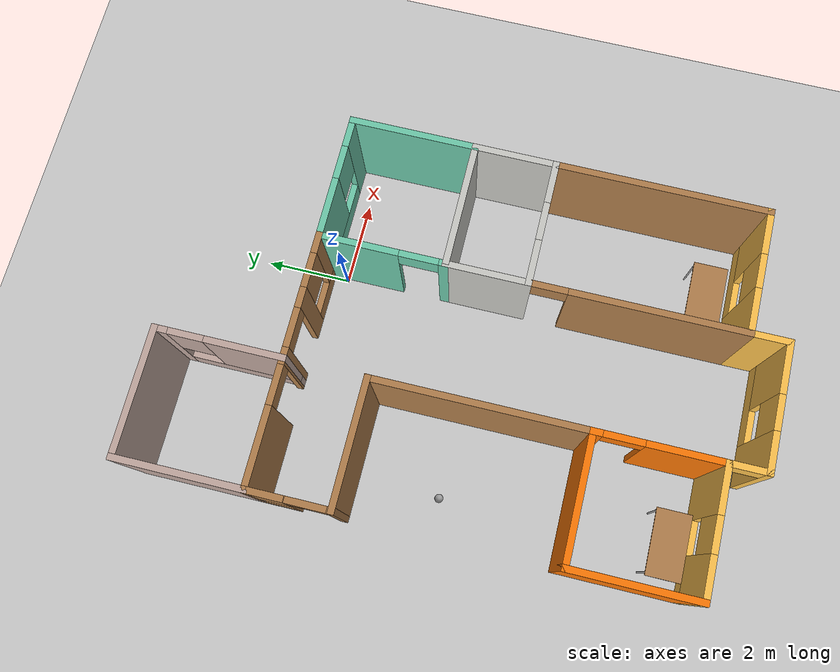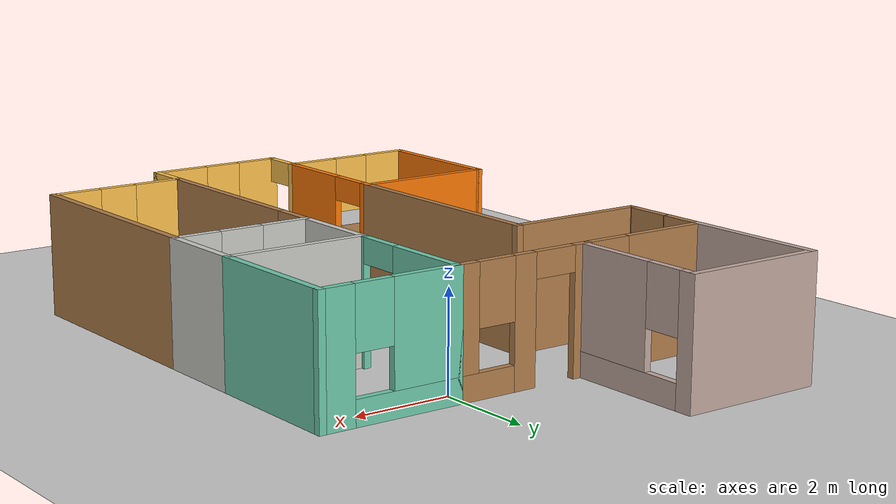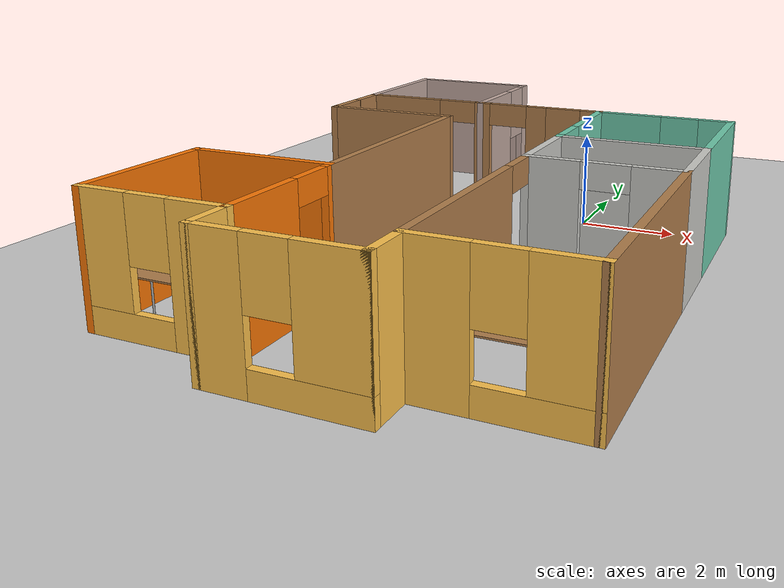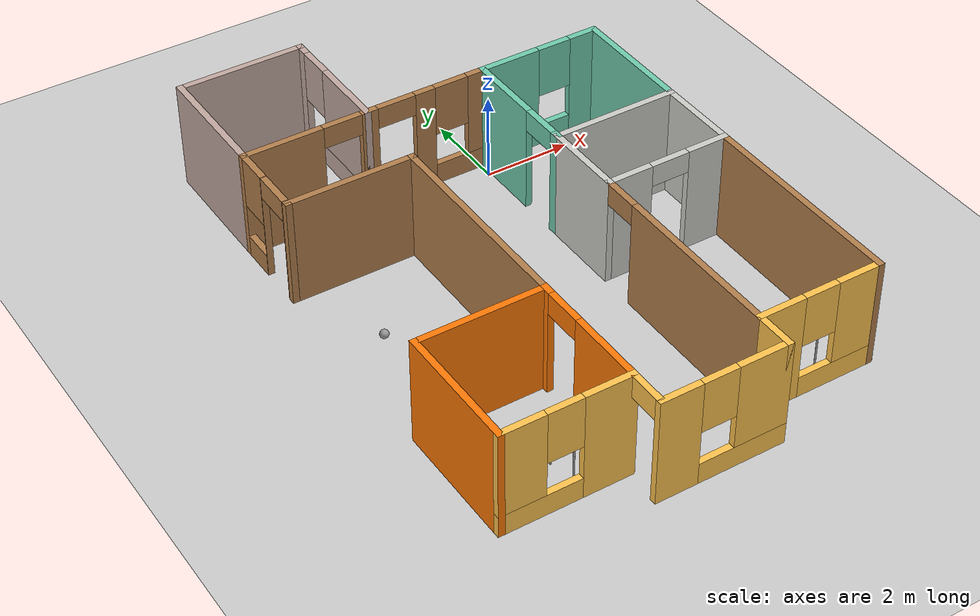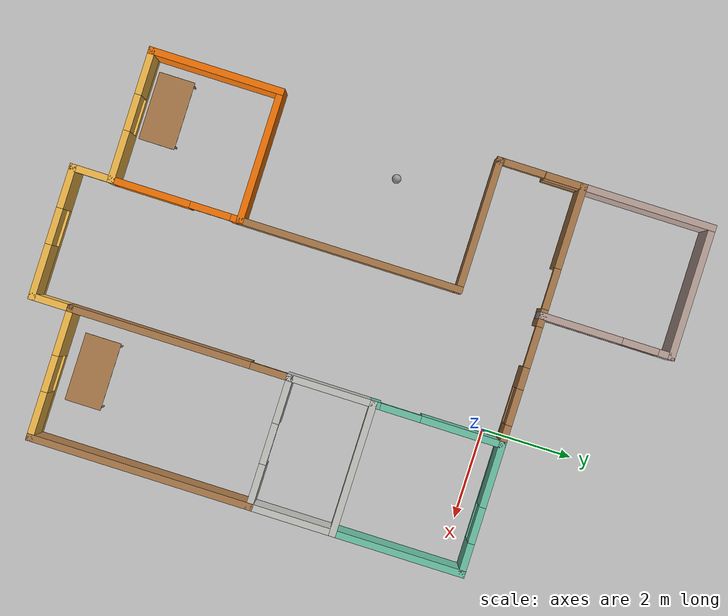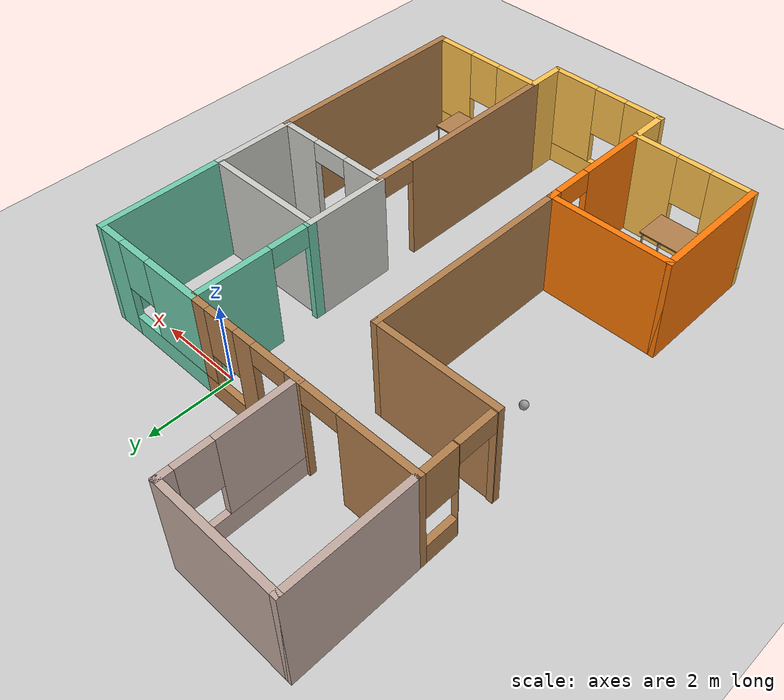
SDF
<sdf version="1.6">
 <world name="default">
  <model name="ground_plane">
   <static>1</static>
   <link name="link">
    <collision name="collision">
     <geometry><plane><normal>0 0 1</normal><size>100 100</size></plane></geometry>
     <surface>
      <contact><collide_bitmask>65535</collide_bitmask></contact>
      <friction><ode><mu>100</mu><mu2>50</mu2></ode></friction>
     </surface>
    </collision>
    <visual name="visual">
     <cast_shadows>0</cast_shadows>
     <geometry><plane><normal>0 0 1</normal><size>100 100</size></plane></geometry>
     <material>
      <script><uri>file://media/materials/scripts/gazebo.material</uri><name>Gazebo/Grey</name></script>
     </material>
    </visual>
   </link>
  </model>
  <model name="myBuilding">
   <pose>-1.28727 -3.3563 0 0 -0 0</pose>
   <link name="Wall_1">
    <pose>0 -6.625 0 0 -0 0</pose>
    <visual name="Wall_1_Visual_0">
     <pose>-1.01471 0 1.25 0 -0 0</pose>
     <geometry><box><size>0.970584 0.15 2.5</size></box></geometry>
     <material>
      <script><uri>file://media/materials/scripts/gazebo.material</uri><name>Gazebo/Grey</name></script>
      <ambient>1 0.764706 0.305882 1</ambient>
     </material>
     <meta><layer>0</layer></meta>
    </visual>
    <collision name="Wall_1_Collision_0">
     <geometry><box><size>0.970584 0.15 2.5</size></box></geometry>
     <pose>-1.01471 0 1.25 0 -0 0</pose>
    </collision>
    <visual name="Wall_1_Visual_1">
     <pose>0.485292 0 0.25 0 -0 0</pose>
     <geometry><box><size>2.02942 0.15 0.5</size></box></geometry>
     <material>
      <script><uri>file://media/materials/scripts/gazebo.material</uri><name>Gazebo/Grey</name></script>
      <ambient>1 0.764706 0.305882 1</ambient>
     </material>
     <meta><layer>0</layer></meta>
    </visual>
    <collision name="Wall_1_Collision_1">
     <geometry><box><size>2.02942 0.15 0.5</size></box></geometry>
     <pose>0.485292 0 0.25 0 -0 0</pose>
    </collision>
    <visual name="Wall_1_Visual_2">
     <pose>0.885292 0 1.5 0 -0 0</pose>
     <geometry><box><size>1.22942 0.15 2</size></box></geometry>
     <material>
      <script><uri>file://media/materials/scripts/gazebo.material</uri><name>Gazebo/Grey</name></script>
      <ambient>1 0.764706 0.305882 1</ambient>
     </material>
     <meta><layer>0</layer></meta>
    </visual>
    <collision name="Wall_1_Collision_2">
     <geometry><box><size>1.22942 0.15 2</size></box></geometry>
     <pose>0.885292 0 1.5 0 -0 0</pose>
    </collision>
    <visual name="Wall_1_Visual_3">
     <pose>-0.129416 0 1.9 0 -0 0</pose>
     <geometry><box><size>0.8 0.15 1.2</size></box></geometry>
     <material>
      <script><uri>file://media/materials/scripts/gazebo.material</uri><name>Gazebo/Grey</name></script>
      <ambient>1 0.764706 0.305882 1</ambient>
     </material>
     <meta><layer>0</layer></meta>
    </visual>
    <collision name="Wall_1_Collision_3">
     <geometry><box><size>0.8 0.15 1.2</size></box></geometry>
     <pose>-0.129416 0 1.9 0 -0 0</pose>
    </collision>
   </link>
   <link name="Wall_10">
    <collision name="Wall_10_Collision">
     <geometry><box><size>3 0.15 2.5</size></box></geometry>
     <pose>0 0 1.25 0 -0 0</pose>
    </collision>
    <visual name="Wall_10_Visual">
     <pose>0 0 1.25 0 -0 0</pose>
     <geometry><box><size>3 0.15 2.5</size></box></geometry>
     <material>
      <script><uri>file://media/materials/scripts/gazebo.material</uri><name>Gazebo/CeilingTiled</name></script>
      <ambient>1 1 1 1</ambient>
     </material>
     <meta><layer>0</layer></meta>
    </visual>
    <pose>2.85 0.925 0 0 -0 3.14159</pose>
   </link>
   <link name="Wall_11">
    <collision name="Wall_11_Collision">
     <geometry><box><size>2 0.15 2.5</size></box></geometry>
     <pose>0 0 1.25 0 -0 0</pose>
    </collision>
    <visual name="Wall_11_Visual">
     <pose>0 0 1.25 0 -0 0</pose>
     <geometry><box><size>2 0.15 2.5</size></box></geometry>
     <material>
      <script><uri>file://media/materials/scripts/gazebo.material</uri><name>Gazebo/CeilingTiled</name></script>
      <ambient>1 1 1 1</ambient>
     </material>
     <meta><layer>0</layer></meta>
    </visual>
    <pose>1.425 0 0 0 0 -1.5708</pose>
   </link>
   <link name="Wall_13">
    <collision name="Wall_13_Collision">
     <geometry><box><size>3 0.15 2.5</size></box></geometry>
     <pose>0 0 1.25 0 -0 0</pose>
    </collision>
    <visual name="Wall_13_Visual">
     <pose>0 0 1.25 0 -0 0</pose>
     <geometry><box><size>3 0.15 2.5</size></box></geometry>
     <material>
      <script><uri>file://media/materials/scripts/gazebo.material</uri><name>Gazebo/Grey</name></script>
      <ambient>0.435294 0.796078 0.67451 1</ambient>
     </material>
     <meta><layer>0</layer></meta>
    </visual>
    <pose>4.275 2.35 0 0 -0 1.5708</pose>
   </link>
   <link name="Wall_14">
    <pose>2.85 3.775 0 0 -0 3.14159</pose>
    <visual name="Wall_14_Visual_0">
     <pose>-1.12972 0 1.25 0 -0 0</pose>
     <geometry><box><size>0.740563 0.15 2.5</size></box></geometry>
     <material>
      <script><uri>file://media/materials/scripts/gazebo.material</uri><name>Gazebo/Grey</name></script>
      <ambient>0.435294 0.796078 0.67451 1</ambient>
     </material>
     <meta><layer>0</layer></meta>
    </visual>
    <collision name="Wall_14_Collision_0">
     <geometry><box><size>0.740563 0.15 2.5</size></box></geometry>
     <pose>-1.12972 0 1.25 0 -0 0</pose>
    </collision>
    <visual name="Wall_14_Visual_1">
     <pose>0.370282 0 0.25 0 -0 0</pose>
     <geometry><box><size>2.25944 0.15 0.5</size></box></geometry>
     <material>
      <script><uri>file://media/materials/scripts/gazebo.material</uri><name>Gazebo/Grey</name></script>
      <ambient>0.435294 0.796078 0.67451 1</ambient>
     </material>
     <meta><layer>0</layer></meta>
    </visual>
    <collision name="Wall_14_Collision_1">
     <geometry><box><size>2.25944 0.15 0.5</size></box></geometry>
     <pose>0.370282 0 0.25 0 -0 0</pose>
    </collision>
    <visual name="Wall_14_Visual_2">
     <pose>0.770282 0 1.5 0 -0 0</pose>
     <geometry><box><size>1.45944 0.15 2</size></box></geometry>
     <material>
      <script><uri>file://media/materials/scripts/gazebo.material</uri><name>Gazebo/Grey</name></script>
      <ambient>0.435294 0.796078 0.67451 1</ambient>
     </material>
     <meta><layer>0</layer></meta>
    </visual>
    <collision name="Wall_14_Collision_2">
     <geometry><box><size>1.45944 0.15 2</size></box></geometry>
     <pose>0.770282 0 1.5 0 -0 0</pose>
    </collision>
    <visual name="Wall_14_Visual_3">
     <pose>-0.359437 0 1.9 0 -0 0</pose>
     <geometry><box><size>0.8 0.15 1.2</size></box></geometry>
     <material>
      <script><uri>file://media/materials/scripts/gazebo.material</uri><name>Gazebo/Grey</name></script>
      <ambient>0.435294 0.796078 0.67451 1</ambient>
     </material>
     <meta><layer>0</layer></meta>
    </visual>
    <collision name="Wall_14_Collision_3">
     <geometry><box><size>0.8 0.15 1.2</size></box></geometry>
     <pose>-0.359437 0 1.9 0 -0 0</pose>
    </collision>
   </link>
   <link name="Wall_15">
    <pose>1.425 2.35 0 0 0 -1.5708</pose>
    <visual name="Wall_15_Visual_0">
     <pose>-0.563237 0 1.25 0 -0 0</pose>
     <geometry><box><size>1.87353 0.15 2.5</size></box></geometry>
     <material>
      <script><uri>file://media/materials/scripts/gazebo.material</uri><name>Gazebo/Grey</name></script>
      <ambient>0.435294 0.796078 0.67451 1</ambient>
     </material>
     <meta><layer>0</layer></meta>
    </visual>
    <collision name="Wall_15_Collision_0">
     <geometry><box><size>1.87353 0.15 2.5</size></box></geometry>
     <pose>-0.563237 0 1.25 0 -0 0</pose>
    </collision>
    <visual name="Wall_15_Visual_1">
     <pose>1.38676 0 1.25 0 -0 0</pose>
     <geometry><box><size>0.226475 0.15 2.5</size></box></geometry>
     <material>
      <script><uri>file://media/materials/scripts/gazebo.material</uri><name>Gazebo/Grey</name></script>
      <ambient>0.435294 0.796078 0.67451 1</ambient>
     </material>
     <meta><layer>0</layer></meta>
    </visual>
    <collision name="Wall_15_Collision_1">
     <geometry><box><size>0.226475 0.15 2.5</size></box></geometry>
     <pose>1.38676 0 1.25 0 -0 0</pose>
    </collision>
    <visual name="Wall_15_Visual_2">
     <pose>0.823525 0 2.25 0 -0 0</pose>
     <geometry><box><size>0.9 0.15 0.5</size></box></geometry>
     <material>
      <script><uri>file://media/materials/scripts/gazebo.material</uri><name>Gazebo/Grey</name></script>
      <ambient>0.435294 0.796078 0.67451 1</ambient>
     </material>
     <meta><layer>0</layer></meta>
    </visual>
    <collision name="Wall_15_Collision_2">
     <geometry><box><size>0.9 0.15 0.5</size></box></geometry>
     <pose>0.823525 0 2.25 0 -0 0</pose>
    </collision>
   </link>
   <link name="Wall_17">
    <pose>-1.425 -6.2 0 0 -0 1.5708</pose>
    <visual name="Wall_17_Visual_0">
     <pose>-0.443398 0 1.25 0 -0 0</pose>
     <geometry><box><size>0.113204 0.15 2.5</size></box></geometry>
     <material>
      <script><uri>file://media/materials/scripts/gazebo.material</uri><name>Gazebo/Grey</name></script>
      <ambient>1 0.764706 0.305882 1</ambient>
     </material>
     <meta><layer>0</layer></meta>
    </visual>
    <collision name="Wall_17_Collision_0">
     <geometry><box><size>0.113204 0.15 2.5</size></box></geometry>
     <pose>-0.443398 0 1.25 0 -0 0</pose>
    </collision>
    <visual name="Wall_17_Visual_1">
     <pose>0.056602 0 2.25 0 -0 0</pose>
     <geometry><box><size>0.886796 0.15 0.5</size></box></geometry>
     <material>
      <script><uri>file://media/materials/scripts/gazebo.material</uri><name>Gazebo/Grey</name></script>
      <ambient>1 0.764706 0.305882 1</ambient>
     </material>
     <meta><layer>0</layer></meta>
    </visual>
    <collision name="Wall_17_Collision_1">
     <geometry><box><size>0.886796 0.15 0.5</size></box></geometry>
     <pose>0.056602 0 2.25 0 -0 0</pose>
    </collision>
   </link>
   <link name="Wall_18">
    <pose>-2.85 -5.775 0 0 -0 3.14159</pose>
    <visual name="Wall_18_Visual_0">
     <pose>-0.922456 0 1.25 0 -0 0</pose>
     <geometry><box><size>1.15509 0.15 2.5</size></box></geometry>
     <material>
      <script><uri>file://media/materials/scripts/gazebo.material</uri><name>Gazebo/Grey</name></script>
      <ambient>1 0.764706 0.305882 1</ambient>
     </material>
     <meta><layer>0</layer></meta>
    </visual>
    <collision name="Wall_18_Collision_0">
     <geometry><box><size>1.15509 0.15 2.5</size></box></geometry>
     <pose>-0.922456 0 1.25 0 -0 0</pose>
    </collision>
    <visual name="Wall_18_Visual_1">
     <pose>0.577544 0 0.25 0 -0 0</pose>
     <geometry><box><size>1.84491 0.15 0.5</size></box></geometry>
     <material>
      <script><uri>file://media/materials/scripts/gazebo.material</uri><name>Gazebo/Grey</name></script>
      <ambient>1 0.764706 0.305882 1</ambient>
     </material>
     <meta><layer>0</layer></meta>
    </visual>
    <collision name="Wall_18_Collision_1">
     <geometry><box><size>1.84491 0.15 0.5</size></box></geometry>
     <pose>0.577544 0 0.25 0 -0 0</pose>
    </collision>
    <visual name="Wall_18_Visual_2">
     <pose>0.977544 0 1.5 0 -0 0</pose>
     <geometry><box><size>1.04491 0.15 2</size></box></geometry>
     <material>
      <script><uri>file://media/materials/scripts/gazebo.material</uri><name>Gazebo/Grey</name></script>
      <ambient>1 0.764706 0.305882 1</ambient>
     </material>
     <meta><layer>0</layer></meta>
    </visual>
    <collision name="Wall_18_Collision_2">
     <geometry><box><size>1.04491 0.15 2</size></box></geometry>
     <pose>0.977544 0 1.5 0 -0 0</pose>
    </collision>
    <visual name="Wall_18_Visual_3">
     <pose>0.055089 0 1.9 0 -0 0</pose>
     <geometry><box><size>0.8 0.15 1.2</size></box></geometry>
     <material>
      <script><uri>file://media/materials/scripts/gazebo.material</uri><name>Gazebo/Grey</name></script>
      <ambient>1 0.764706 0.305882 1</ambient>
     </material>
     <meta><layer>0</layer></meta>
    </visual>
    <collision name="Wall_18_Collision_3">
     <geometry><box><size>0.8 0.15 1.2</size></box></geometry>
     <pose>0.055089 0 1.9 0 -0 0</pose>
    </collision>
   </link>
   <link name="Wall_19">
    <collision name="Wall_19_Collision">
     <geometry><box><size>3 0.15 2.5</size></box></geometry>
     <pose>0 0 1.25 0 -0 0</pose>
    </collision>
    <visual name="Wall_19_Visual">
     <pose>0 0 1.25 0 -0 0</pose>
     <geometry><box><size>3 0.15 2.5</size></box></geometry>
     <material>
      <script><uri>file://media/materials/scripts/gazebo.material</uri><name>Gazebo/Grey</name></script>
      <ambient>0.996078 0.47451 0.0196078 1</ambient>
     </material>
     <meta><layer>0</layer></meta>
    </visual>
    <pose>-4.275 -4.35 0 0 -0 1.5708</pose>
   </link>
   <link name="Wall_2">
    <collision name="Wall_2_Collision">
     <geometry><box><size>1 0.15 2.5</size></box></geometry>
     <pose>0 0 1.25 0 -0 0</pose>
    </collision>
    <visual name="Wall_2_Visual">
     <pose>0 0 1.25 0 -0 0</pose>
     <geometry><box><size>1 0.15 2.5</size></box></geometry>
     <material>
      <script><uri>file://media/materials/scripts/gazebo.material</uri><name>Gazebo/Grey</name></script>
      <ambient>1 0.764706 0.305882 1</ambient>
     </material>
     <meta><layer>0</layer></meta>
    </visual>
    <pose>1.425 -6.2 0 0 -0 1.5708</pose>
   </link>
   <link name="Wall_20">
    <collision name="Wall_20_Collision">
     <geometry><box><size>3 0.15 2.5</size></box></geometry>
     <pose>0 0 1.25 0 -0 0</pose>
    </collision>
    <visual name="Wall_20_Visual">
     <pose>0 0 1.25 0 -0 0</pose>
     <geometry><box><size>3 0.15 2.5</size></box></geometry>
     <material>
      <script><uri>file://media/materials/scripts/gazebo.material</uri><name>Gazebo/Grey</name></script>
      <ambient>0.996078 0.47451 0.0196078 1</ambient>
     </material>
     <meta><layer>0</layer></meta>
    </visual>
    <pose>-2.85 -2.925 0 0 -0 0</pose>
   </link>
   <link name="Wall_21">
    <pose>-1.425 -4.35 0 0 0 -1.5708</pose>
    <visual name="Wall_21_Visual_0">
     <pose>-1.35881 0 1.25 0 -0 0</pose>
     <geometry><box><size>0.282373 0.15 2.5</size></box></geometry>
     <material>
      <script><uri>file://media/materials/scripts/gazebo.material</uri><name>Gazebo/Grey</name></script>
      <ambient>0.996078 0.47451 0.0196078 1</ambient>
     </material>
     <meta><layer>0</layer></meta>
    </visual>
    <collision name="Wall_21_Collision_0">
     <geometry><box><size>0.282373 0.15 2.5</size></box></geometry>
     <pose>-1.35881 0 1.25 0 -0 0</pose>
    </collision>
    <visual name="Wall_21_Visual_1">
     <pose>0.591186 0 1.25 0 -0 0</pose>
     <geometry><box><size>1.81763 0.15 2.5</size></box></geometry>
     <material>
      <script><uri>file://media/materials/scripts/gazebo.material</uri><name>Gazebo/Grey</name></script>
      <ambient>0.996078 0.47451 0.0196078 1</ambient>
     </material>
     <meta><layer>0</layer></meta>
    </visual>
    <collision name="Wall_21_Collision_1">
     <geometry><box><size>1.81763 0.15 2.5</size></box></geometry>
     <pose>0.591186 0 1.25 0 -0 0</pose>
    </collision>
    <visual name="Wall_21_Visual_2">
     <pose>-0.767627 0 2.25 0 -0 0</pose>
     <geometry><box><size>0.9 0.15 0.5</size></box></geometry>
     <material>
      <script><uri>file://media/materials/scripts/gazebo.material</uri><name>Gazebo/Grey</name></script>
      <ambient>0.996078 0.47451 0.0196078 1</ambient>
     </material>
     <meta><layer>0</layer></meta>
    </visual>
    <collision name="Wall_21_Collision_2">
     <geometry><box><size>0.9 0.15 0.5</size></box></geometry>
     <pose>-0.767627 0 2.25 0 -0 0</pose>
    </collision>
   </link>
   <link name="Wall_24">
    <collision name="Wall_24_Collision">
     <geometry><box><size>5 0.15 2.5</size></box></geometry>
     <pose>0 0 1.25 0 -0 0</pose>
    </collision>
    <visual name="Wall_24_Visual">
     <pose>0 0 1.25 0 -0 0</pose>
     <geometry><box><size>5 0.15 2.5</size></box></geometry>
     <material>
      <script><uri>file://media/materials/scripts/gazebo.material</uri><name>Gazebo/Wood</name></script>
      <ambient>1 1 1 1</ambient>
     </material>
     <meta><layer>0</layer></meta>
    </visual>
    <pose>-1.425 -0.5 0 0 -0 1.5708</pose>
   </link>
   <link name="Wall_25">
    <collision name="Wall_25_Collision">
     <geometry><box><size>3 0.15 2.5</size></box></geometry>
     <pose>0 0 1.25 0 -0 0</pose>
    </collision>
    <visual name="Wall_25_Visual">
     <pose>0 0 1.25 0 -0 0</pose>
     <geometry><box><size>3 0.15 2.5</size></box></geometry>
     <material>
      <script><uri>file://media/materials/scripts/gazebo.material</uri><name>Gazebo/Wood</name></script>
      <ambient>1 1 1 1</ambient>
     </material>
     <meta><layer>0</layer></meta>
    </visual>
    <pose>-2.85 1.925 0 0 -0 3.14159</pose>
   </link>
   <link name="Wall_3">
    <pose>2.85 -5.775 0 0 -0 0</pose>
    <visual name="Wall_3_Visual_0">
     <pose>-0.941247 0 1.25 0 -0 0</pose>
     <geometry><box><size>1.11751 0.15 2.5</size></box></geometry>
     <material>
      <script><uri>file://media/materials/scripts/gazebo.material</uri><name>Gazebo/Grey</name></script>
      <ambient>1 0.764706 0.305882 1</ambient>
     </material>
     <meta><layer>0</layer></meta>
    </visual>
    <collision name="Wall_3_Collision_0">
     <geometry><box><size>1.11751 0.15 2.5</size></box></geometry>
     <pose>-0.941247 0 1.25 0 -0 0</pose>
    </collision>
    <visual name="Wall_3_Visual_1">
     <pose>0.558753 0 0.25 0 -0 0</pose>
     <geometry><box><size>1.88249 0.15 0.5</size></box></geometry>
     <material>
      <script><uri>file://media/materials/scripts/gazebo.material</uri><name>Gazebo/Grey</name></script>
      <ambient>1 0.764706 0.305882 1</ambient>
     </material>
     <meta><layer>0</layer></meta>
    </visual>
    <collision name="Wall_3_Collision_1">
     <geometry><box><size>1.88249 0.15 0.5</size></box></geometry>
     <pose>0.558753 0 0.25 0 -0 0</pose>
    </collision>
    <visual name="Wall_3_Visual_2">
     <pose>0.958753 0 1.5 0 -0 0</pose>
     <geometry><box><size>1.08249 0.15 2</size></box></geometry>
     <material>
      <script><uri>file://media/materials/scripts/gazebo.material</uri><name>Gazebo/Grey</name></script>
      <ambient>1 0.764706 0.305882 1</ambient>
     </material>
     <meta><layer>0</layer></meta>
    </visual>
    <collision name="Wall_3_Collision_2">
     <geometry><box><size>1.08249 0.15 2</size></box></geometry>
     <pose>0.958753 0 1.5 0 -0 0</pose>
    </collision>
    <visual name="Wall_3_Visual_3">
     <pose>0.017506 0 1.9 0 -0 0</pose>
     <geometry><box><size>0.8 0.15 1.2</size></box></geometry>
     <material>
      <script><uri>file://media/materials/scripts/gazebo.material</uri><name>Gazebo/Grey</name></script>
      <ambient>1 0.764706 0.305882 1</ambient>
     </material>
     <meta><layer>0</layer></meta>
    </visual>
    <collision name="Wall_3_Collision_3">
     <geometry><box><size>0.8 0.15 1.2</size></box></geometry>
     <pose>0.017506 0 1.9 0 -0 0</pose>
    </collision>
   </link>
   <link name="Wall_30">
    <pose>-4.275 2.85 0 0 -0 1.5708</pose>
    <visual name="Wall_30_Visual_0">
     <pose>-0.914094 0 1.25 0 -0 0</pose>
     <geometry><box><size>0.171813 0.15 2.5</size></box></geometry>
     <material>
      <script><uri>file://media/materials/scripts/gazebo.material</uri><name>Gazebo/Wood</name></script>
      <ambient>1 1 1 1</ambient>
     </material>
     <meta><layer>0</layer></meta>
    </visual>
    <collision name="Wall_30_Collision_0">
     <geometry><box><size>0.171813 0.15 2.5</size></box></geometry>
     <pose>-0.914094 0 1.25 0 -0 0</pose>
    </collision>
    <visual name="Wall_30_Visual_1">
     <pose>0.079254 0 1.25 0 -0 0</pose>
     <geometry><box><size>0.014884 0.15 2.5</size></box></geometry>
     <material>
      <script><uri>file://media/materials/scripts/gazebo.material</uri><name>Gazebo/Wood</name></script>
      <ambient>1 1 1 1</ambient>
     </material>
     <meta><layer>0</layer></meta>
    </visual>
    <collision name="Wall_30_Collision_1">
     <geometry><box><size>0.014884 0.15 2.5</size></box></geometry>
     <pose>0.079254 0 1.25 0 -0 0</pose>
    </collision>
    <visual name="Wall_30_Visual_2">
     <pose>0.543348 0 0.25 0 -0 0</pose>
     <geometry><box><size>0.913304 0.15 0.5</size></box></geometry>
     <material>
      <script><uri>file://media/materials/scripts/gazebo.material</uri><name>Gazebo/Wood</name></script>
      <ambient>1 1 1 1</ambient>
     </material>
     <meta><layer>0</layer></meta>
    </visual>
    <collision name="Wall_30_Collision_2">
     <geometry><box><size>0.913304 0.15 0.5</size></box></geometry>
     <pose>0.543348 0 0.25 0 -0 0</pose>
    </collision>
    <visual name="Wall_30_Visual_3">
     <pose>0.943348 0 1.5 0 -0 0</pose>
     <geometry><box><size>0.113304 0.15 2</size></box></geometry>
     <material>
      <script><uri>file://media/materials/scripts/gazebo.material</uri><name>Gazebo/Wood</name></script>
      <ambient>1 1 1 1</ambient>
     </material>
     <meta><layer>0</layer></meta>
    </visual>
    <collision name="Wall_30_Collision_3">
     <geometry><box><size>0.113304 0.15 2</size></box></geometry>
     <pose>0.943348 0 1.5 0 -0 0</pose>
    </collision>
    <visual name="Wall_30_Visual_4">
     <pose>0.486696 0 1.9 0 -0 0</pose>
     <geometry><box><size>0.8 0.15 1.2</size></box></geometry>
     <material>
      <script><uri>file://media/materials/scripts/gazebo.material</uri><name>Gazebo/Wood</name></script>
      <ambient>1 1 1 1</ambient>
     </material>
     <meta><layer>0</layer></meta>
    </visual>
    <collision name="Wall_30_Collision_4">
     <geometry><box><size>0.8 0.15 1.2</size></box></geometry>
     <pose>0.486696 0 1.9 0 -0 0</pose>
    </collision>
    <visual name="Wall_30_Visual_5">
     <pose>-0.378187 0 2.25 0 -0 0</pose>
     <geometry><box><size>0.9 0.15 0.5</size></box></geometry>
     <material>
      <script><uri>file://media/materials/scripts/gazebo.material</uri><name>Gazebo/Wood</name></script>
      <ambient>1 1 1 1</ambient>
     </material>
     <meta><layer>0</layer></meta>
    </visual>
    <collision name="Wall_30_Collision_5">
     <geometry><box><size>0.9 0.15 0.5</size></box></geometry>
     <pose>-0.378187 0 2.25 0 -0 0</pose>
    </collision>
   </link>
   <link name="Wall_31">
    <pose>-1.425 3.775 0 0 -0 0</pose>
    <visual name="Wall_31_Visual_0">
     <pose>-1.98505 0 1.25 0 -0 0</pose>
     <geometry><box><size>1.87991 0.15 2.5</size></box></geometry>
     <material>
      <script><uri>file://media/materials/scripts/gazebo.material</uri><name>Gazebo/Wood</name></script>
      <ambient>1 1 1 1</ambient>
     </material>
     <meta><layer>0</layer></meta>
    </visual>
    <collision name="Wall_31_Collision_0">
     <geometry><box><size>1.87991 0.15 2.5</size></box></geometry>
     <pose>-1.98505 0 1.25 0 -0 0</pose>
    </collision>
    <visual name="Wall_31_Visual_1">
     <pose>0.048542 0 1.25 0 -0 0</pose>
     <geometry><box><size>0.387269 0.15 2.5</size></box></geometry>
     <material>
      <script><uri>file://media/materials/scripts/gazebo.material</uri><name>Gazebo/Wood</name></script>
      <ambient>1 1 1 1</ambient>
     </material>
     <meta><layer>0</layer></meta>
    </visual>
    <collision name="Wall_31_Collision_1">
     <geometry><box><size>0.387269 0.15 2.5</size></box></geometry>
     <pose>0.048542 0 1.25 0 -0 0</pose>
    </collision>
    <visual name="Wall_31_Visual_2">
     <pose>1.38092 0 1.25 0 -0 0</pose>
     <geometry><box><size>0.477496 0.15 2.5</size></box></geometry>
     <material>
      <script><uri>file://media/materials/scripts/gazebo.material</uri><name>Gazebo/Wood</name></script>
      <ambient>1 1 1 1</ambient>
     </material>
     <meta><layer>0</layer></meta>
    </visual>
    <collision name="Wall_31_Collision_2">
     <geometry><box><size>0.477496 0.15 2.5</size></box></geometry>
     <pose>1.38092 0 1.25 0 -0 0</pose>
    </collision>
    <visual name="Wall_31_Visual_3">
     <pose>2.27234 0 0.25 0 -0 0</pose>
     <geometry><box><size>1.30533 0.15 0.5</size></box></geometry>
     <material>
      <script><uri>file://media/materials/scripts/gazebo.material</uri><name>Gazebo/Wood</name></script>
      <ambient>1 1 1 1</ambient>
     </material>
     <meta><layer>0</layer></meta>
    </visual>
    <collision name="Wall_31_Collision_3">
     <geometry><box><size>1.30533 0.15 0.5</size></box></geometry>
     <pose>2.27234 0 0.25 0 -0 0</pose>
    </collision>
    <visual name="Wall_31_Visual_4">
     <pose>2.67234 0 1.5 0 -0 0</pose>
     <geometry><box><size>0.505327 0.15 2</size></box></geometry>
     <material>
      <script><uri>file://media/materials/scripts/gazebo.material</uri><name>Gazebo/Wood</name></script>
      <ambient>1 1 1 1</ambient>
     </material>
     <meta><layer>0</layer></meta>
    </visual>
    <collision name="Wall_31_Collision_4">
     <geometry><box><size>0.505327 0.15 2</size></box></geometry>
     <pose>2.67234 0 1.5 0 -0 0</pose>
    </collision>
    <visual name="Wall_31_Visual_5">
     <pose>2.01967 0 1.9 0 -0 0</pose>
     <geometry><box><size>0.8 0.15 1.2</size></box></geometry>
     <material>
      <script><uri>file://media/materials/scripts/gazebo.material</uri><name>Gazebo/Wood</name></script>
      <ambient>1 1 1 1</ambient>
     </material>
     <meta><layer>0</layer></meta>
    </visual>
    <collision name="Wall_31_Collision_5">
     <geometry><box><size>0.8 0.15 1.2</size></box></geometry>
     <pose>2.01967 0 1.9 0 -0 0</pose>
    </collision>
    <visual name="Wall_31_Visual_6">
     <pose>-0.595092 0 2.25 0 -0 0</pose>
     <geometry><box><size>0.9 0.15 0.5</size></box></geometry>
     <material>
      <script><uri>file://media/materials/scripts/gazebo.material</uri><name>Gazebo/Wood</name></script>
      <ambient>1 1 1 1</ambient>
     </material>
     <meta><layer>0</layer></meta>
    </visual>
    <collision name="Wall_31_Collision_6">
     <geometry><box><size>0.9 0.15 0.5</size></box></geometry>
     <pose>-0.595092 0 2.25 0 -0 0</pose>
    </collision>
    <visual name="Wall_31_Visual_7">
     <pose>0.692177 0 2.25 0 -0 0</pose>
     <geometry><box><size>0.9 0.15 0.5</size></box></geometry>
     <material>
      <script><uri>file://media/materials/scripts/gazebo.material</uri><name>Gazebo/Wood</name></script>
      <ambient>1 1 1 1</ambient>
     </material>
     <meta><layer>0</layer></meta>
    </visual>
    <collision name="Wall_31_Collision_7">
     <geometry><box><size>0.9 0.15 0.5</size></box></geometry>
     <pose>0.692177 0 2.25 0 -0 0</pose>
    </collision>
   </link>
   <link name="Wall_33">
    <collision name="Wall_33_Collision">
     <geometry><box><size>3 0.15 2.5</size></box></geometry>
     <pose>0 0 1.25 0 -0 0</pose>
    </collision>
    <visual name="Wall_33_Visual">
     <pose>0 0 1.25 0 -0 0</pose>
     <geometry><box><size>3 0.15 2.5</size></box></geometry>
     <material>
      <script><uri>file://media/materials/scripts/gazebo.material</uri><name>Gazebo/Grey</name></script>
      <ambient>0.760784 0.662745 0.627451 1</ambient>
     </material>
     <meta><layer>0</layer></meta>
    </visual>
    <pose>-4.275 5.2 0 0 -0 1.5708</pose>
   </link>
   <link name="Wall_34">
    <collision name="Wall_34_Collision">
     <geometry><box><size>3 0.15 2.5</size></box></geometry>
     <pose>0 0 1.25 0 -0 0</pose>
    </collision>
    <visual name="Wall_34_Visual">
     <pose>0 0 1.25 0 -0 0</pose>
     <geometry><box><size>3 0.15 2.5</size></box></geometry>
     <material>
      <script><uri>file://media/materials/scripts/gazebo.material</uri><name>Gazebo/Grey</name></script>
      <ambient>0.760784 0.662745 0.627451 1</ambient>
     </material>
     <meta><layer>0</layer></meta>
    </visual>
    <pose>-2.85 6.625 0 0 -0 0</pose>
   </link>
   <link name="Wall_35">
    <pose>-1.425 5.2 0 0 0 -1.5708</pose>
    <visual name="Wall_35_Visual_0">
     <pose>-1.31567 0 1.25 0 -0 0</pose>
     <geometry><box><size>0.368653 0.15 2.5</size></box></geometry>
     <material>
      <script><uri>file://media/materials/scripts/gazebo.material</uri><name>Gazebo/Grey</name></script>
      <ambient>0.760784 0.662745 0.627451 1</ambient>
     </material>
     <meta><layer>0</layer></meta>
    </visual>
    <collision name="Wall_35_Collision_0">
     <geometry><box><size>0.368653 0.15 2.5</size></box></geometry>
     <pose>-1.31567 0 1.25 0 -0 0</pose>
    </collision>
    <visual name="Wall_35_Visual_1">
     <pose>0.184327 0 0.25 0 -0 0</pose>
     <geometry><box><size>2.63135 0.15 0.5</size></box></geometry>
     <material>
      <script><uri>file://media/materials/scripts/gazebo.material</uri><name>Gazebo/Grey</name></script>
      <ambient>0.760784 0.662745 0.627451 1</ambient>
     </material>
     <meta><layer>0</layer></meta>
    </visual>
    <collision name="Wall_35_Collision_1">
     <geometry><box><size>2.63135 0.15 0.5</size></box></geometry>
     <pose>0.184327 0 0.25 0 -0 0</pose>
    </collision>
    <visual name="Wall_35_Visual_2">
     <pose>0.584327 0 1.5 0 -0 0</pose>
     <geometry><box><size>1.83135 0.15 2</size></box></geometry>
     <material>
      <script><uri>file://media/materials/scripts/gazebo.material</uri><name>Gazebo/Grey</name></script>
      <ambient>0.760784 0.662745 0.627451 1</ambient>
     </material>
     <meta><layer>0</layer></meta>
    </visual>
    <collision name="Wall_35_Collision_2">
     <geometry><box><size>1.83135 0.15 2</size></box></geometry>
     <pose>0.584327 0 1.5 0 -0 0</pose>
    </collision>
    <visual name="Wall_35_Visual_3">
     <pose>-0.731347 0 1.9 0 -0 0</pose>
     <geometry><box><size>0.8 0.15 1.2</size></box></geometry>
     <material>
      <script><uri>file://media/materials/scripts/gazebo.material</uri><name>Gazebo/Grey</name></script>
      <ambient>0.760784 0.662745 0.627451 1</ambient>
     </material>
     <meta><layer>0</layer></meta>
    </visual>
    <collision name="Wall_35_Collision_3">
     <geometry><box><size>0.8 0.15 1.2</size></box></geometry>
     <pose>-0.731347 0 1.9 0 -0 0</pose>
    </collision>
   </link>
   <link name="Wall_5">
    <collision name="Wall_5_Collision">
     <geometry><box><size>5 0.15 2.5</size></box></geometry>
     <pose>0 0 1.25 0 -0 0</pose>
    </collision>
    <visual name="Wall_5_Visual">
     <pose>0 0 1.25 0 -0 0</pose>
     <geometry><box><size>5 0.15 2.5</size></box></geometry>
     <material>
      <script><uri>file://media/materials/scripts/gazebo.material</uri><name>Gazebo/Wood</name></script>
      <ambient>1 1 1 1</ambient>
     </material>
     <meta><layer>0</layer></meta>
    </visual>
    <pose>4.275 -3.35 0 0 -0 1.5708</pose>
   </link>
   <link name="Wall_6">
    <pose>2.85 -0.925 0 0 -0 3.14159</pose>
    <visual name="Wall_6_Visual_0">
     <pose>-0.99381 0 1.25 0 -0 0</pose>
     <geometry><box><size>1.01238 0.15 2.5</size></box></geometry>
     <material>
      <script><uri>file://media/materials/scripts/gazebo.material</uri><name>Gazebo/CeilingTiled</name></script>
      <ambient>1 1 1 1</ambient>
     </material>
     <meta><layer>0</layer></meta>
    </visual>
    <collision name="Wall_6_Collision_0">
     <geometry><box><size>1.01238 0.15 2.5</size></box></geometry>
     <pose>-0.99381 0 1.25 0 -0 0</pose>
    </collision>
    <visual name="Wall_6_Visual_1">
     <pose>0.95619 0 1.25 0 -0 0</pose>
     <geometry><box><size>1.08762 0.15 2.5</size></box></geometry>
     <material>
      <script><uri>file://media/materials/scripts/gazebo.material</uri><name>Gazebo/CeilingTiled</name></script>
      <ambient>1 1 1 1</ambient>
     </material>
     <meta><layer>0</layer></meta>
    </visual>
    <collision name="Wall_6_Collision_1">
     <geometry><box><size>1.08762 0.15 2.5</size></box></geometry>
     <pose>0.95619 0 1.25 0 -0 0</pose>
    </collision>
    <visual name="Wall_6_Visual_2">
     <pose>-0.03762 0 2.25 0 -0 0</pose>
     <geometry><box><size>0.9 0.15 0.5</size></box></geometry>
     <material>
      <script><uri>file://media/materials/scripts/gazebo.material</uri><name>Gazebo/CeilingTiled</name></script>
      <ambient>1 1 1 1</ambient>
     </material>
     <meta><layer>0</layer></meta>
    </visual>
    <collision name="Wall_6_Collision_2">
     <geometry><box><size>0.9 0.15 0.5</size></box></geometry>
     <pose>-0.03762 0 2.25 0 -0 0</pose>
    </collision>
   </link>
   <link name="Wall_7">
    <pose>1.425 -3.35 0 0 0 -1.5708</pose>
    <visual name="Wall_7_Visual_0">
     <pose>-2.47512 0 1.25 0 -0 0</pose>
     <geometry><box><size>0.049766 0.15 2.5</size></box></geometry>
     <material>
      <script><uri>file://media/materials/scripts/gazebo.material</uri><name>Gazebo/Wood</name></script>
      <ambient>1 1 1 1</ambient>
     </material>
     <meta><layer>0</layer></meta>
    </visual>
    <collision name="Wall_7_Collision_0">
     <geometry><box><size>0.049766 0.15 2.5</size></box></geometry>
     <pose>-2.47512 0 1.25 0 -0 0</pose>
    </collision>
    <visual name="Wall_7_Visual_1">
     <pose>0.474883 0 1.25 0 -0 0</pose>
     <geometry><box><size>4.05023 0.15 2.5</size></box></geometry>
     <material>
      <script><uri>file://media/materials/scripts/gazebo.material</uri><name>Gazebo/Wood</name></script>
      <ambient>1 1 1 1</ambient>
     </material>
     <meta><layer>0</layer></meta>
    </visual>
    <collision name="Wall_7_Collision_1">
     <geometry><box><size>4.05023 0.15 2.5</size></box></geometry>
     <pose>0.474883 0 1.25 0 -0 0</pose>
    </collision>
    <visual name="Wall_7_Visual_2">
     <pose>-2.00023 0 2.25 0 -0 0</pose>
     <geometry><box><size>0.9 0.15 0.5</size></box></geometry>
     <material>
      <script><uri>file://media/materials/scripts/gazebo.material</uri><name>Gazebo/Wood</name></script>
      <ambient>1 1 1 1</ambient>
     </material>
     <meta><layer>0</layer></meta>
    </visual>
    <collision name="Wall_7_Collision_2">
     <geometry><box><size>0.9 0.15 0.5</size></box></geometry>
     <pose>-2.00023 0 2.25 0 -0 0</pose>
    </collision>
   </link>
   <link name="Wall_9">
    <collision name="Wall_9_Collision">
     <geometry><box><size>2 0.15 2.5</size></box></geometry>
     <pose>0 0 1.25 0 -0 0</pose>
    </collision>
    <visual name="Wall_9_Visual">
     <pose>0 0 1.25 0 -0 0</pose>
     <geometry><box><size>2 0.15 2.5</size></box></geometry>
     <material>
      <script><uri>file://media/materials/scripts/gazebo.material</uri><name>Gazebo/CeilingTiled</name></script>
      <ambient>1 1 1 1</ambient>
     </material>
     <meta><layer>0</layer></meta>
    </visual>
    <pose>4.275 0 0 0 -0 1.5708</pose>
   </link>
   <static>1</static>
  </model>
  <model name="table_2">
   <static>1</static>
   <link name="link">
    <collision name="surface">
     <pose>0 0 1 0 -0 0</pose>
     <geometry><box><size>1.5 0.8 0.03</size></box></geometry>
     <surface><friction><ode><mu>0.6</mu><mu2>0.6</mu2></ode></friction></surface>
    </collision>
    <visual name="visual1">
     <pose>0 0 1 0 -0 0</pose>
     <geometry><box><size>1.5 0.8 0.03</size></box></geometry>
     <material>
      <script><uri>file://media/materials/scripts/gazebo.material</uri><name>Gazebo/Wood</name></script>
     </material>
    </visual>
    <collision name="front_left_leg">
     <pose>0.68 0.38 0.5 0 -0 0</pose>
     <geometry><cylinder><radius>0.02</radius><length>1</length></cylinder></geometry>
    </collision>
    <visual name="front_left_leg">
     <pose>0.68 0.38 0.5 0 -0 0</pose>
     <geometry><cylinder><radius>0.02</radius><length>1</length></cylinder></geometry>
     <material>
      <script><uri>file://media/materials/scripts/gazebo.material</uri><name>Gazebo/Grey</name></script>
     </material>
    </visual>
    <collision name="front_right_leg">
     <pose>0.68 -0.38 0.5 0 -0 0</pose>
     <geometry><cylinder><radius>0.02</radius><length>1</length></cylinder></geometry>
    </collision>
    <visual name="front_right_leg">
     <pose>0.68 -0.38 0.5 0 -0 0</pose>
     <geometry><cylinder><radius>0.02</radius><length>1</length></cylinder></geometry>
     <material>
      <script><uri>file://media/materials/scripts/gazebo.material</uri><name>Gazebo/Grey</name></script>
     </material>
    </visual>
    <collision name="back_right_leg">
     <pose>-0.68 -0.38 0.5 0 -0 0</pose>
     <geometry><cylinder><radius>0.02</radius><length>1</length></cylinder></geometry>
    </collision>
    <visual name="back_right_leg">
     <pose>-0.68 -0.38 0.5 0 -0 0</pose>
     <geometry><cylinder><radius>0.02</radius><length>1</length></cylinder></geometry>
     <material>
      <script><uri>file://media/materials/scripts/gazebo.material</uri><name>Gazebo/Grey</name></script>
     </material>
    </visual>
    <collision name="back_left_leg">
     <pose>-0.68 0.38 0.5 0 -0 0</pose>
     <geometry><cylinder><radius>0.02</radius><length>1</length></cylinder></geometry>
    </collision>
    <visual name="back_left_leg">
     <pose>-0.68 0.38 0.5 0 -0 0</pose>
     <geometry><cylinder><radius>0.02</radius><length>1</length></cylinder></geometry>
     <material>
      <script><uri>file://media/materials/scripts/gazebo.material</uri><name>Gazebo/Grey</name></script>
     </material>
    </visual>
   </link>
   <pose>-4.4932 -8.53633 0 0 -0 0</pose>
  </model>
  <model name="table_3">
   <static>1</static>
   <link name="link">
    <collision name="surface">
     <pose>0 0 1 0 -0 0</pose>
     <geometry><box><size>1.5 0.8 0.03</size></box></geometry>
     <surface><friction><ode><mu>0.6</mu><mu2>0.6</mu2></ode></friction></surface>
    </collision>
    <visual name="visual1">
     <pose>0 0 1 0 -0 0</pose>
     <geometry><box><size>1.5 0.8 0.03</size></box></geometry>
     <material>
      <script><uri>file://media/materials/scripts/gazebo.material</uri><name>Gazebo/Wood</name></script>
     </material>
    </visual>
    <collision name="front_left_leg">
     <pose>0.68 0.38 0.5 0 -0 0</pose>
     <geometry><cylinder><radius>0.02</radius><length>1</length></cylinder></geometry>
    </collision>
    <visual name="front_left_leg">
     <pose>0.68 0.38 0.5 0 -0 0</pose>
     <geometry><cylinder><radius>0.02</radius><length>1</length></cylinder></geometry>
     <material>
      <script><uri>file://media/materials/scripts/gazebo.material</uri><name>Gazebo/Grey</name></script>
     </material>
    </visual>
    <collision name="front_right_leg">
     <pose>0.68 -0.38 0.5 0 -0 0</pose>
     <geometry><cylinder><radius>0.02</radius><length>1</length></cylinder></geometry>
    </collision>
    <visual name="front_right_leg">
     <pose>0.68 -0.38 0.5 0 -0 0</pose>
     <geometry><cylinder><radius>0.02</radius><length>1</length></cylinder></geometry>
     <material>
      <script><uri>file://media/materials/scripts/gazebo.material</uri><name>Gazebo/Grey</name></script>
     </material>
    </visual>
    <collision name="back_right_leg">
     <pose>-0.68 -0.38 0.5 0 -0 0</pose>
     <geometry><cylinder><radius>0.02</radius><length>1</length></cylinder></geometry>
    </collision>
    <visual name="back_right_leg">
     <pose>-0.68 -0.38 0.5 0 -0 0</pose>
     <geometry><cylinder><radius>0.02</radius><length>1</length></cylinder></geometry>
     <material>
      <script><uri>file://media/materials/scripts/gazebo.material</uri><name>Gazebo/Grey</name></script>
     </material>
    </visual>
    <collision name="back_left_leg">
     <pose>-0.68 0.38 0.5 0 -0 0</pose>
     <geometry><cylinder><radius>0.02</radius><length>1</length></cylinder></geometry>
    </collision>
    <visual name="back_left_leg">
     <pose>-0.68 0.38 0.5 0 -0 0</pose>
     <geometry><cylinder><radius>0.02</radius><length>1</length></cylinder></geometry>
     <material>
      <script><uri>file://media/materials/scripts/gazebo.material</uri><name>Gazebo/Grey</name></script>
     </material>
    </visual>
   </link>
   <pose>1.31282 -8.36194 0 0 -0 0</pose>
  </model>
  <model name="my_ball">
   <link name="link_1">
    <inertial>
     <mass>1</mass>
     <inertia><ixx>0.1</ixx><ixy>0</ixy><ixz>0</ixz><iyy>0.1</iyy><iyz>0</iyz><izz>0.1</izz></inertia>
    </inertial>
    <visual name="visual">
     <geometry><sphere><radius>0.1</radius></sphere></geometry>
     <material>
      <lighting>1</lighting>
      <script><uri>file://media/materials/scripts/gazebo.material</uri><name>Gazebo/Grey</name></script>
      <shader type="vertex"><normal_map>__default__</normal_map></shader>
      <ambient>1 1 1 1</ambient>
      <diffuse>1 1 1 1</diffuse>
      <specular>1 1 1 1</specular>
      <emissive>1 1 1 1</emissive>
     </material>
    </visual>
    <collision name="collision">
     <geometry><sphere><radius>0.1</radius></sphere></geometry>
     <surface>
      <friction>
       <ode><mu>1</mu><mu2>1</mu2><fdir1>0 0 0</fdir1><slip1>0</slip1><slip2>0</slip2></ode>
       <torsional>
        <coefficient>1</coefficient>
        <patch_radius>0</patch_radius>
        <surface_radius>0</surface_radius>
        <use_patch_radius>1</use_patch_radius>
        <ode><slip>0</slip></ode>
       </torsional>
      </friction>
      <bounce><restitution_coefficient>0</restitution_coefficient><threshold>1e+06</threshold></bounce>
      <contact>
       <collide_without_contact>0</collide_without_contact>
       <collide_without_contact_bitmask>1</collide_without_contact_bitmask>
       <collide_bitmask>1</collide_bitmask>
       <ode>
        <soft_cfm>0</soft_cfm>
        <soft_erp>0.2</soft_erp>
        <kp>1e+13</kp>
        <kd>1</kd>
        <max_vel>0.01</max_vel>
        <min_depth>0</min_depth>
       </ode>
       <bullet>
        <split_impulse>1</split_impulse>
        <split_impulse_penetration_threshold>-0.01</split_impulse_penetration_threshold>
        <soft_cfm>0</soft_cfm>
        <soft_erp>0.2</soft_erp>
        <kp>1e+13</kp>
        <kd>1</kd>
       </bullet>
      </contact>
     </surface>
    </collision>
   </link>
   <static>0</static>
   <pose>-4.61372 -3.404 0.1 0 -0 0</pose>
  </model>
 </world>
</sdf>
